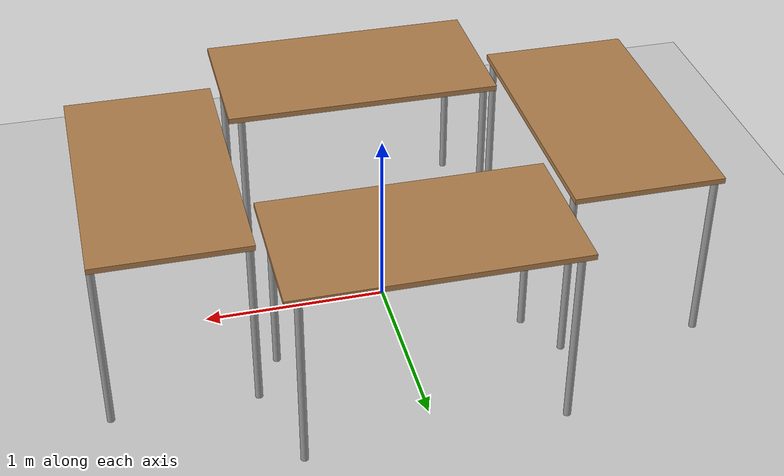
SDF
<sdf version="1.4">
 <world name="default">
  <include><uri>model://ground_plane</uri></include>
  <include><uri>model://sun</uri></include>
  <include>
   <uri>model://table</uri>
   <name>table1</name>
   <static>true</static>
   <pose>0.0 -0.8 0 0 0 0</pose>
  </include>
  <include>
   <uri>model://table</uri>
   <name>table2</name>
   <static>true</static>
   <pose>0.0 0.8 0 0 0 0</pose>
  </include>
  <include>
   <uri>model://table</uri>
   <name>table3</name>
   <static>true</static>
   <pose>1.2 0 0 0 0 1.570796</pose>
  </include>
  <include>
   <uri>model://table</uri>
   <name>table4</name>
   <static>true</static>
   <pose>-1.2 0 0 0 0 1.570796</pose>
  </include>
 </world>
</sdf>

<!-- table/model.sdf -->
<sdf version="1.5">
  <model name="table">
    <static>true</static>
    <link name="link">
      <collision name="surface">
        <pose>0 0 1.0 0 0 0</pose>
        <geometry>
          <box>
            <size>1.5 0.8 0.03</size>
          </box>
        </geometry>
        <surface>
          <friction>
            <ode>
              <mu>0.6</mu>
              <mu2>0.6</mu2>
            </ode>
          </friction>
        </surface>
      </collision>
      <visual name="visual1">
        <pose>0 0 1.0 0 0 0</pose>
        <geometry>
          <box>
            <size>1.5 0.8 0.03</size>
          </box>
        </geometry>
        <material>
          <script>
            <uri>model://media/materials/scripts/gazebo.material</uri>
            <name>Gazebo/Wood</name>
          </script>
        </material>
      </visual>
      <collision name="front_left_leg">
        <pose>0.68 0.38 0.5 0 0 0</pose>
        <geometry>
          <cylinder>
            <radius>0.02</radius>
            <length>1.0</length>
          </cylinder>
        </geometry>
      </collision>
      <visual name="front_left_leg">
        <pose>0.68 0.38 0.5 0 0 0</pose>
        <geometry>
          <cylinder>
            <radius>0.02</radius>
            <length>1.0</length>
          </cylinder>
        </geometry>
        <material>
          <script>
            <uri>model://media/materials/scripts/gazebo.material</uri>
            <name>Gazebo/Grey</name>
          </script>
        </material>
      </visual>
      <collision name="front_right_leg">
        <pose>0.68 -0.38 0.5 0 0 0</pose>
        <geometry>
          <cylinder>
            <radius>0.02</radius>
            <length>1.0</length>
          </cylinder>
        </geometry>
      </collision>
      <visual name="front_right_leg">
        <pose>0.68 -0.38 0.5 0 0 0</pose>
        <geometry>
          <cylinder>
            <radius>0.02</radius>
            <length>1.0</length>
          </cylinder>
        </geometry>
        <material>
          <script>
            <uri>model://media/materials/scripts/gazebo.material</uri>
            <name>Gazebo/Grey</name>
          </script>
        </material>
      </visual>
      <collision name="back_right_leg">
        <pose>-0.68 -0.38 0.5 0 0 0</pose>
        <geometry>
          <cylinder>
            <radius>0.02</radius>
            <length>1.0</length>
          </cylinder>
        </geometry>
      </collision>
      <visual name="back_right_leg">
        <pose>-0.68 -0.38 0.5 0 0 0</pose>
        <geometry>
          <cylinder>
            <radius>0.02</radius>
            <length>1.0</length>
          </cylinder>
        </geometry>
        <material>
          <script>
            <uri>model://media/materials/scripts/gazebo.material</uri>
            <name>Gazebo/Grey</name>
          </script>
        </material>
      </visual>
      <collision name="back_left_leg">
        <pose>-0.68 0.38 0.5 0 0 0</pose>
        <geometry>
          <cylinder>
            <radius>0.02</radius>
            <length>1.0</length>
          </cylinder>
        </geometry>
      </collision>
      <visual name="back_left_leg">
        <pose>-0.68 0.38 0.5 0 0 0</pose>
        <geometry>
          <cylinder>
            <radius>0.02</radius>
            <length>1.0</length>
          </cylinder>
        </geometry>
        <material>
          <script>
            <uri>model://media/materials/scripts/gazebo.material</uri>
            <name>Gazebo/Grey</name>
          </script>
        </material>
      </visual>
    </link>
  </model>
</sdf>
